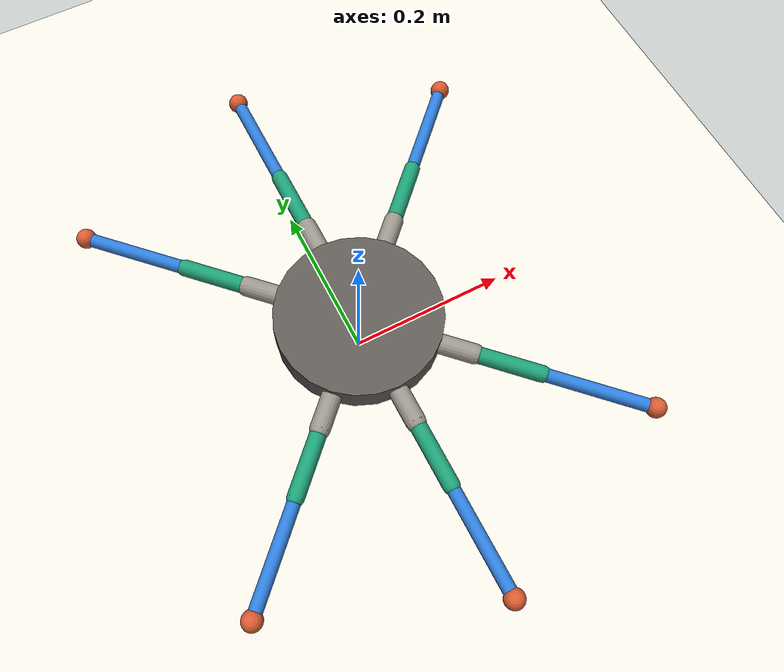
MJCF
<mujoco model="robo_greeno_hexapod">
  <compiler angle="radian"/>

  <option integrator="implicitfast"/>

  <visual>
    <headlight ambient="0.4 0.4 0.4" diffuse="0.5 0.5 0.5"/>
    <rgba haze="0.95 0.95 0.93 1"/>
  </visual>

  <default>
    <joint armature="0.012" damping="0.14"/>
    <geom friction="1.1 0.06 0.01" density="700"/>
  </default>

  <worldbody>
    <geom name="ground" size="3 3 0.1" type="plane" rgba="0.92 0.91 0.87 1"/>
    <light pos="0 0 1.4" dir="0 0 -1"/>
    <body name="trunk" pos="0 0 0.075">
      <joint name="trunk" type="free" limited="false" actuatorfrclimited="false" armature="0" damping="0"/>
      <geom name="trunk" size="0.1 0.018" type="cylinder" mass="0.45" rgba="0.36 0.35 0.33 1"/>
      <site name="trunk_center" pos="0 0 0" size="0.01"/>
      <body name="front_left_coxa" pos="0.070711 0.070711 0" quat="0.92388 0 0 0.382683">
        <joint name="front_left_coxa" pos="0 0 0" axis="0 0 1" range="-0.872665 0.872665"/>
        <geom size="0.012 0.02" pos="0.02 0 0" quat="0.707107 0 -0.707107 0" type="capsule" rgba="0.6 0.58 0.54 1"/>
        <body name="front_left_femur" pos="0.04 0 0">
          <joint name="front_left_femur" pos="0 0 0" axis="0 -1 0" range="-1.5708 2.0944"/>
          <geom size="0.01 0.04" pos="0.04 0 0" quat="0.707107 0 -0.707107 0" type="capsule" rgba="0.11 0.62 0.46 1"/>
          <body name="front_left_tibia" pos="0.08 0 0">
            <joint name="front_left_tibia" pos="0 0 0" axis="0 -1 0" range="-2.96706 0.349066"/>
            <geom size="0.008 0.065" pos="0.065 0 0" quat="0.707107 0 -0.707107 0" type="capsule" rgba="0.18 0.49 0.85 1"/>
            <geom name="front_left_foot" size="0.012" pos="0.13 0 0" rgba="0.85 0.35 0.19 1"/>
            <site name="front_left_foot" pos="0.13 0 0" size="0.006"/>
          </body>
        </body>
      </body>
      <body name="mid_left_coxa" pos="0 0.1 0" quat="0.707107 0 0 0.707107">
        <joint name="mid_left_coxa" pos="0 0 0" axis="0 0 1" range="-0.872665 0.872665"/>
        <geom size="0.012 0.02" pos="0.02 0 0" quat="0.707107 0 -0.707107 0" type="capsule" rgba="0.6 0.58 0.54 1"/>
        <body name="mid_left_femur" pos="0.04 0 0">
          <joint name="mid_left_femur" pos="0 0 0" axis="0 -1 0" range="-1.5708 2.0944"/>
          <geom size="0.01 0.04" pos="0.04 0 0" quat="0.707107 0 -0.707107 0" type="capsule" rgba="0.11 0.62 0.46 1"/>
          <body name="mid_left_tibia" pos="0.08 0 0">
            <joint name="mid_left_tibia" pos="0 0 0" axis="0 -1 0" range="-2.96706 0.349066"/>
            <geom size="0.008 0.065" pos="0.065 0 0" quat="0.707107 0 -0.707107 0" type="capsule" rgba="0.18 0.49 0.85 1"/>
            <geom name="mid_left_foot" size="0.012" pos="0.13 0 0" rgba="0.85 0.35 0.19 1"/>
            <site name="mid_left_foot" pos="0.13 0 0" size="0.006"/>
          </body>
        </body>
      </body>
      <body name="back_left_coxa" pos="-0.070711 0.070711 0" quat="0.382684 0 0 0.923879">
        <joint name="back_left_coxa" pos="0 0 0" axis="0 0 1" range="-0.872665 0.872665"/>
        <geom size="0.012 0.02" pos="0.02 0 0" quat="0.707107 0 -0.707107 0" type="capsule" rgba="0.6 0.58 0.54 1"/>
        <body name="back_left_femur" pos="0.04 0 0">
          <joint name="back_left_femur" pos="0 0 0" axis="0 -1 0" range="-1.5708 2.0944"/>
          <geom size="0.01 0.04" pos="0.04 0 0" quat="0.707107 0 -0.707107 0" type="capsule" rgba="0.11 0.62 0.46 1"/>
          <body name="back_left_tibia" pos="0.08 0 0">
            <joint name="back_left_tibia" pos="0 0 0" axis="0 -1 0" range="-2.96706 0.349066"/>
            <geom size="0.008 0.065" pos="0.065 0 0" quat="0.707107 0 -0.707107 0" type="capsule" rgba="0.18 0.49 0.85 1"/>
            <geom name="back_left_foot" size="0.012" pos="0.13 0 0" rgba="0.85 0.35 0.19 1"/>
            <site name="back_left_foot" pos="0.13 0 0" size="0.006"/>
          </body>
        </body>
      </body>
      <body name="back_right_coxa" pos="-0.070711 -0.070711 0" quat="0.382684 0 0 -0.923879">
        <joint name="back_right_coxa" pos="0 0 0" axis="0 0 1" range="-0.872665 0.872665"/>
        <geom size="0.012 0.02" pos="0.02 0 0" quat="0.707107 0 -0.707107 0" type="capsule" rgba="0.6 0.58 0.54 1"/>
        <body name="back_right_femur" pos="0.04 0 0">
          <joint name="back_right_femur" pos="0 0 0" axis="0 -1 0" range="-1.5708 2.0944"/>
          <geom size="0.01 0.04" pos="0.04 0 0" quat="0.707107 0 -0.707107 0" type="capsule" rgba="0.11 0.62 0.46 1"/>
          <body name="back_right_tibia" pos="0.08 0 0">
            <joint name="back_right_tibia" pos="0 0 0" axis="0 -1 0" range="-2.96706 0.349066"/>
            <geom size="0.008 0.065" pos="0.065 0 0" quat="0.707107 0 -0.707107 0" type="capsule" rgba="0.18 0.49 0.85 1"/>
            <geom name="back_right_foot" size="0.012" pos="0.13 0 0" rgba="0.85 0.35 0.19 1"/>
            <site name="back_right_foot" pos="0.13 0 0" size="0.006"/>
          </body>
        </body>
      </body>
      <body name="mid_right_coxa" pos="0 -0.1 0" quat="0.707107 0 0 -0.707107">
        <joint name="mid_right_coxa" pos="0 0 0" axis="0 0 1" range="-0.872665 0.872665"/>
        <geom size="0.012 0.02" pos="0.02 0 0" quat="0.707107 0 -0.707107 0" type="capsule" rgba="0.6 0.58 0.54 1"/>
        <body name="mid_right_femur" pos="0.04 0 0">
          <joint name="mid_right_femur" pos="0 0 0" axis="0 -1 0" range="-1.5708 2.0944"/>
          <geom size="0.01 0.04" pos="0.04 0 0" quat="0.707107 0 -0.707107 0" type="capsule" rgba="0.11 0.62 0.46 1"/>
          <body name="mid_right_tibia" pos="0.08 0 0">
            <joint name="mid_right_tibia" pos="0 0 0" axis="0 -1 0" range="-2.96706 0.349066"/>
            <geom size="0.008 0.065" pos="0.065 0 0" quat="0.707107 0 -0.707107 0" type="capsule" rgba="0.18 0.49 0.85 1"/>
            <geom name="mid_right_foot" size="0.012" pos="0.13 0 0" rgba="0.85 0.35 0.19 1"/>
            <site name="mid_right_foot" pos="0.13 0 0" size="0.006"/>
          </body>
        </body>
      </body>
      <body name="front_right_coxa" pos="0.070711 -0.070711 0" quat="0.92388 0 0 -0.382683">
        <joint name="front_right_coxa" pos="0 0 0" axis="0 0 1" range="-0.872665 0.872665"/>
        <geom size="0.012 0.02" pos="0.02 0 0" quat="0.707107 0 -0.707107 0" type="capsule" rgba="0.6 0.58 0.54 1"/>
        <body name="front_right_femur" pos="0.04 0 0">
          <joint name="front_right_femur" pos="0 0 0" axis="0 -1 0" range="-1.5708 2.0944"/>
          <geom size="0.01 0.04" pos="0.04 0 0" quat="0.707107 0 -0.707107 0" type="capsule" rgba="0.11 0.62 0.46 1"/>
          <body name="front_right_tibia" pos="0.08 0 0">
            <joint name="front_right_tibia" pos="0 0 0" axis="0 -1 0" range="-2.96706 0.349066"/>
            <geom size="0.008 0.065" pos="0.065 0 0" quat="0.707107 0 -0.707107 0" type="capsule" rgba="0.18 0.49 0.85 1"/>
            <geom name="front_right_foot" size="0.012" pos="0.13 0 0" rgba="0.85 0.35 0.19 1"/>
            <site name="front_right_foot" pos="0.13 0 0" size="0.006"/>
          </body>
        </body>
      </body>
    </body>
  </worldbody>

  <actuator>
    <general name="front_left_coxa" joint="front_left_coxa" ctrlrange="-0.872665 0.872665" biastype="affine" gainprm="18" biasprm="0 -18"/>
    <general name="front_left_femur" joint="front_left_femur" ctrlrange="-1.5708 2.0944" biastype="affine" gainprm="30" biasprm="0 -30"/>
    <general name="front_left_tibia" joint="front_left_tibia" ctrlrange="-2.96706 0.349066" biastype="affine" gainprm="30" biasprm="0 -30"/>
    <general name="mid_left_coxa" joint="mid_left_coxa" ctrlrange="-0.872665 0.872665" biastype="affine" gainprm="18" biasprm="0 -18"/>
    <general name="mid_left_femur" joint="mid_left_femur" ctrlrange="-1.5708 2.0944" biastype="affine" gainprm="30" biasprm="0 -30"/>
    <general name="mid_left_tibia" joint="mid_left_tibia" ctrlrange="-2.96706 0.349066" biastype="affine" gainprm="30" biasprm="0 -30"/>
    <general name="back_left_coxa" joint="back_left_coxa" ctrlrange="-0.872665 0.872665" biastype="affine" gainprm="18" biasprm="0 -18"/>
    <general name="back_left_femur" joint="back_left_femur" ctrlrange="-1.5708 2.0944" biastype="affine" gainprm="30" biasprm="0 -30"/>
    <general name="back_left_tibia" joint="back_left_tibia" ctrlrange="-2.96706 0.349066" biastype="affine" gainprm="30" biasprm="0 -30"/>
    <general name="back_right_coxa" joint="back_right_coxa" ctrlrange="-0.872665 0.872665" biastype="affine" gainprm="18" biasprm="0 -18"/>
    <general name="back_right_femur" joint="back_right_femur" ctrlrange="-1.5708 2.0944" biastype="affine" gainprm="30" biasprm="0 -30"/>
    <general name="back_right_tibia" joint="back_right_tibia" ctrlrange="-2.96706 0.349066" biastype="affine" gainprm="30" biasprm="0 -30"/>
    <general name="mid_right_coxa" joint="mid_right_coxa" ctrlrange="-0.872665 0.872665" biastype="affine" gainprm="18" biasprm="0 -18"/>
    <general name="mid_right_femur" joint="mid_right_femur" ctrlrange="-1.5708 2.0944" biastype="affine" gainprm="30" biasprm="0 -30"/>
    <general name="mid_right_tibia" joint="mid_right_tibia" ctrlrange="-2.96706 0.349066" biastype="affine" gainprm="30" biasprm="0 -30"/>
    <general name="front_right_coxa" joint="front_right_coxa" ctrlrange="-0.872665 0.872665" biastype="affine" gainprm="18" biasprm="0 -18"/>
    <general name="front_right_femur" joint="front_right_femur" ctrlrange="-1.5708 2.0944" biastype="affine" gainprm="30" biasprm="0 -30"/>
    <general name="front_right_tibia" joint="front_right_tibia" ctrlrange="-2.96706 0.349066" biastype="affine" gainprm="30" biasprm="0 -30"/>
  </actuator>
</mujoco>
